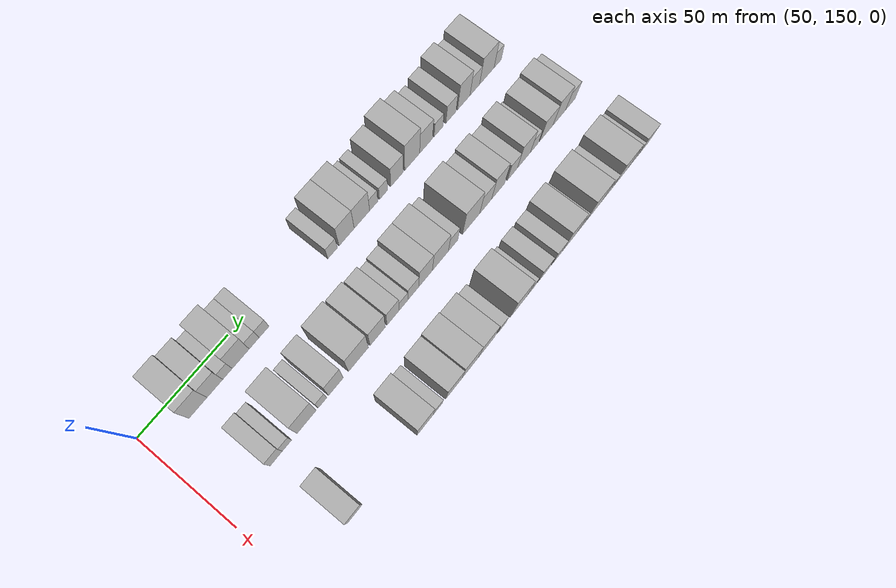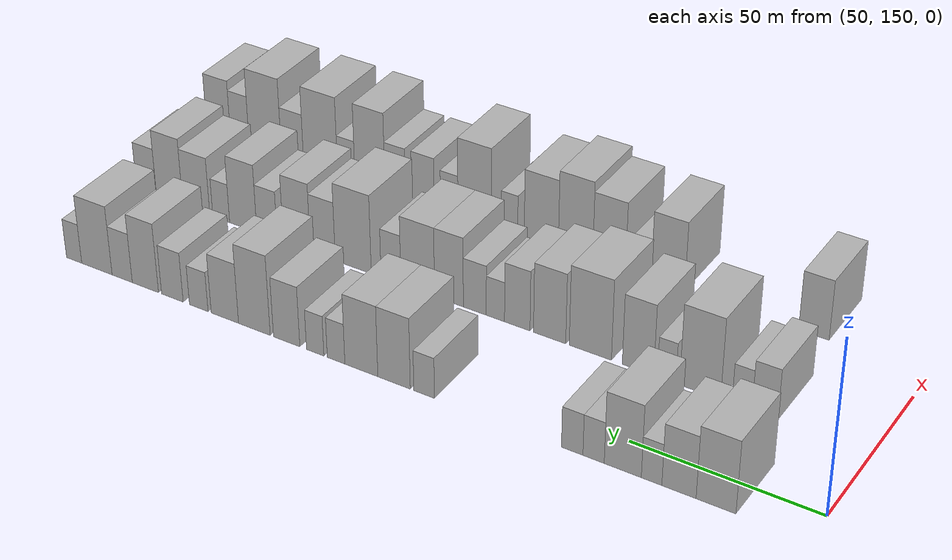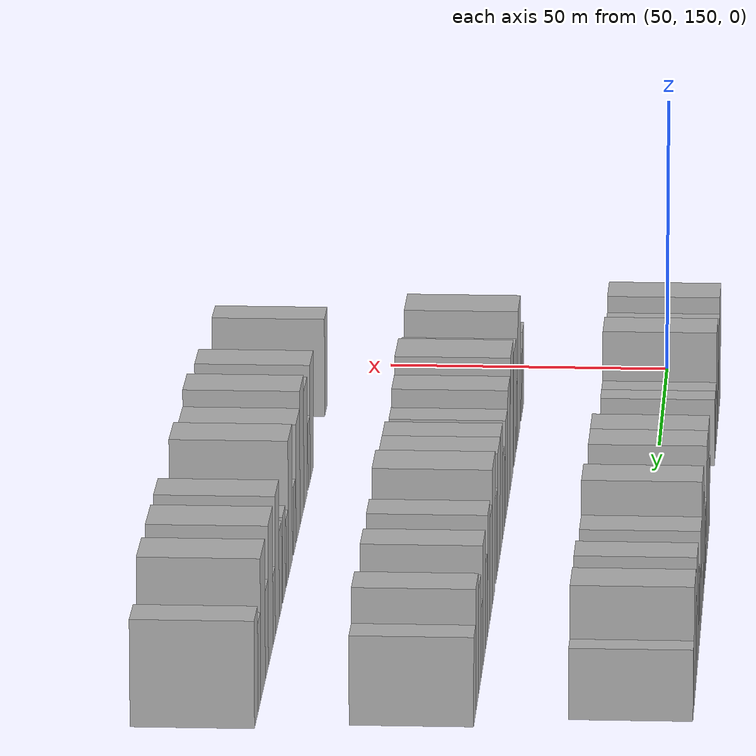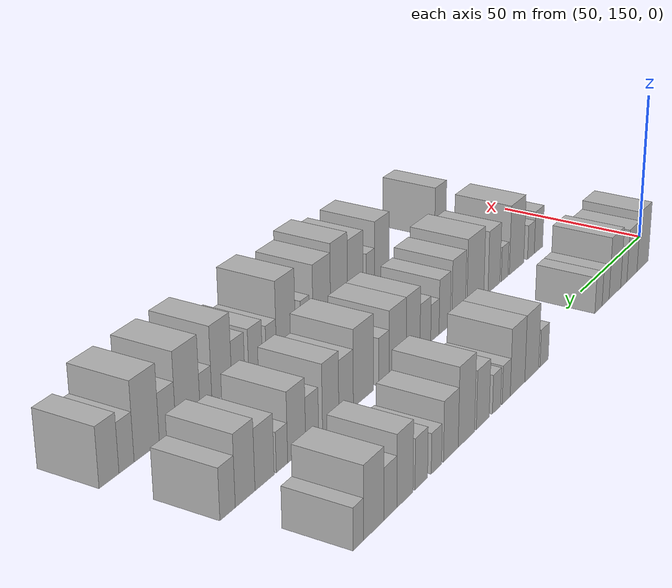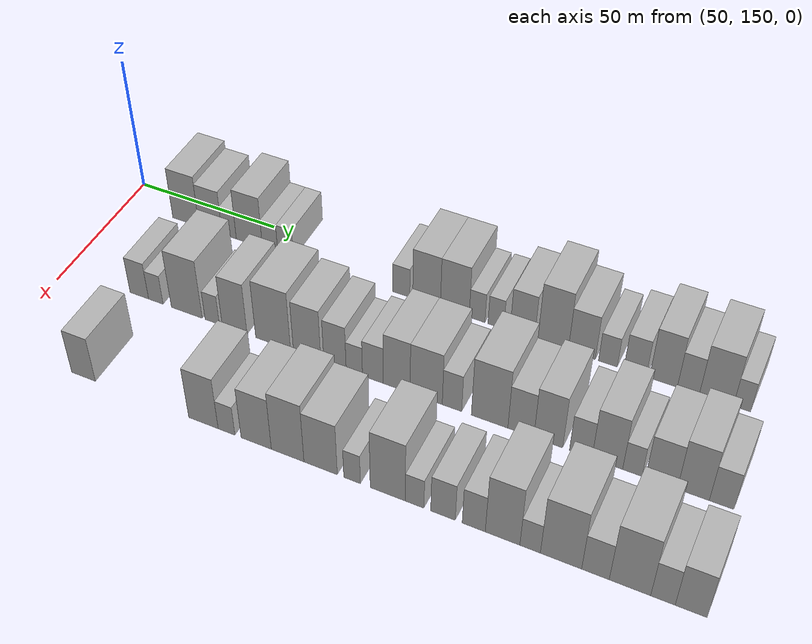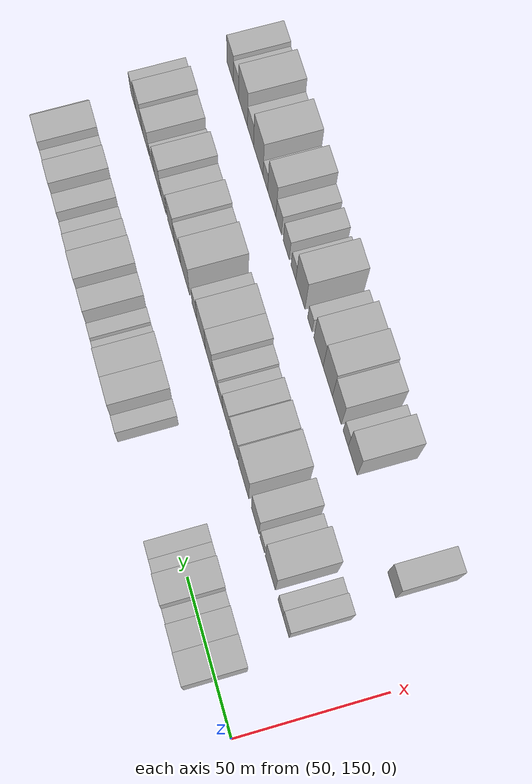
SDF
<sdf version="1.6">
 <world name="default">
  <model name="building_61">
   <static>1</static>
   <pose>50.0000 172.6481 0 0.000000 0.000000 0.000000</pose>
   <link name="link">
    <pose>0 0 10.50 0 0 0</pose>
    <collision name="collision"><geometry><box><size>20.0000 9.9621 21.0000</size></box></geometry></collision>
    <visual name="visual">
     <cast_shadows>0</cast_shadows>
     <geometry><box><size>20.0000 9.9621 21.0000</size></box></geometry>
     <material>
      <script>
       <uri>model://HANNAS_wall/materials/scripts</uri>
       <uri>model://HANNAS_wall/materials/textures</uri>
       <name>vrc/HANNAS_wall</name>
      </script>
     </material>
    </visual>
   </link>
  </model>
  <model name="building_62">
   <static>1</static>
   <pose>50.0000 181.9780 0 0.000000 0.000000 0.000000</pose>
   <link name="link">
    <pose>0 0 9.00 0 0 0</pose>
    <collision name="collision"><geometry><box><size>20.0000 8.6977 18.0000</size></box></geometry></collision>
    <visual name="visual">
     <cast_shadows>0</cast_shadows>
     <geometry><box><size>20.0000 8.6977 18.0000</size></box></geometry>
     <material>
      <script>
       <uri>model://HANNAS_wall/materials/scripts</uri>
       <uri>model://HANNAS_wall/materials/textures</uri>
       <name>vrc/HANNAS_wall</name>
      </script>
     </material>
    </visual>
   </link>
  </model>
  <model name="building_63">
   <static>1</static>
   <pose>50.0000 188.9612 0 0.000000 0.000000 0.000000</pose>
   <link name="link">
    <pose>0 0 6.00 0 0 0</pose>
    <collision name="collision"><geometry><box><size>20.0000 5.2688 12.0000</size></box></geometry></collision>
    <visual name="visual">
     <cast_shadows>0</cast_shadows>
     <geometry><box><size>20.0000 5.2688 12.0000</size></box></geometry>
     <material>
      <script>
       <uri>model://HANNAS_wall/materials/scripts</uri>
       <uri>model://HANNAS_wall/materials/textures</uri>
       <name>vrc/HANNAS_wall</name>
      </script>
     </material>
    </visual>
   </link>
  </model>
  <model name="building_64">
   <static>1</static>
   <pose>50.0000 196.4151 0 0.000000 0.000000 0.000000</pose>
   <link name="link">
    <pose>0 0 10.50 0 0 0</pose>
    <collision name="collision"><geometry><box><size>20.0000 9.6390 21.0000</size></box></geometry></collision>
    <visual name="visual">
     <cast_shadows>0</cast_shadows>
     <geometry><box><size>20.0000 9.6390 21.0000</size></box></geometry>
     <material>
      <script>
       <uri>model://HANNAS_wall/materials/scripts</uri>
       <uri>model://HANNAS_wall/materials/textures</uri>
       <name>vrc/HANNAS_wall</name>
      </script>
     </material>
    </visual>
   </link>
  </model>
  <model name="building_65">
   <static>1</static>
   <pose>50.0000 204.0340 0 0.000000 0.000000 0.000000</pose>
   <link name="link">
    <pose>0 0 6.00 0 0 0</pose>
    <collision name="collision"><geometry><box><size>20.0000 5.5989 12.0000</size></box></geometry></collision>
    <visual name="visual">
     <cast_shadows>0</cast_shadows>
     <geometry><box><size>20.0000 5.5989 12.0000</size></box></geometry>
     <material>
      <script>
       <uri>model://HANNAS_wall/materials/scripts</uri>
       <uri>model://HANNAS_wall/materials/textures</uri>
       <name>vrc/HANNAS_wall</name>
      </script>
     </material>
    </visual>
   </link>
  </model>
  <model name="building_66">
   <static>1</static>
   <pose>50.0000 209.6864 0 0.000000 0.000000 0.000000</pose>
   <link name="link">
    <pose>0 0 6.00 0 0 0</pose>
    <collision name="collision"><geometry><box><size>20.0000 5.7058 12.0000</size></box></geometry></collision>
    <visual name="visual">
     <cast_shadows>0</cast_shadows>
     <geometry><box><size>20.0000 5.7058 12.0000</size></box></geometry>
     <material>
      <script>
       <uri>model://HANNAS_wall/materials/scripts</uri>
       <uri>model://HANNAS_wall/materials/textures</uri>
       <name>vrc/HANNAS_wall</name>
      </script>
     </material>
    </visual>
   </link>
  </model>
  <model name="building_67">
   <static>1</static>
   <pose>50.0000 250.3067 0 0.000000 0.000000 0.000000</pose>
   <link name="link">
    <pose>0 0 6.00 0 0 0</pose>
    <collision name="collision"><geometry><box><size>20.0000 5.8449 12.0000</size></box></geometry></collision>
    <visual name="visual">
     <cast_shadows>0</cast_shadows>
     <geometry><box><size>20.0000 5.8449 12.0000</size></box></geometry>
     <material>
      <script>
       <uri>model://HANNAS_wall/materials/scripts</uri>
       <uri>model://HANNAS_wall/materials/textures</uri>
       <name>vrc/HANNAS_wall</name>
      </script>
     </material>
    </visual>
   </link>
  </model>
  <model name="building_68">
   <static>1</static>
   <pose>50.0000 258.8934 0 0.000000 0.000000 0.000000</pose>
   <link name="link">
    <pose>0 0 10.50 0 0 0</pose>
    <collision name="collision"><geometry><box><size>20.0000 9.3284 21.0000</size></box></geometry></collision>
    <visual name="visual">
     <cast_shadows>0</cast_shadows>
     <geometry><box><size>20.0000 9.3284 21.0000</size></box></geometry>
     <material>
      <script>
       <uri>model://HANNAS_wall/materials/scripts</uri>
       <uri>model://HANNAS_wall/materials/textures</uri>
       <name>vrc/HANNAS_wall</name>
      </script>
     </material>
    </visual>
   </link>
  </model>
  <model name="building_69">
   <static>1</static>
   <pose>50.0000 268.3573 0 0.000000 0.000000 0.000000</pose>
   <link name="link">
    <pose>0 0 10.50 0 0 0</pose>
    <collision name="collision"><geometry><box><size>20.0000 9.5994 21.0000</size></box></geometry></collision>
    <visual name="visual">
     <cast_shadows>0</cast_shadows>
     <geometry><box><size>20.0000 9.5994 21.0000</size></box></geometry>
     <material>
      <script>
       <uri>model://HANNAS_wall/materials/scripts</uri>
       <uri>model://HANNAS_wall/materials/textures</uri>
       <name>vrc/HANNAS_wall</name>
      </script>
     </material>
    </visual>
   </link>
  </model>
  <model name="building_70">
   <static>1</static>
   <pose>50.0000 275.7526 0 0.000000 0.000000 0.000000</pose>
   <link name="link">
    <pose>0 0 6.00 0 0 0</pose>
    <collision name="collision"><geometry><box><size>20.0000 5.1912 12.0000</size></box></geometry></collision>
    <visual name="visual">
     <cast_shadows>0</cast_shadows>
     <geometry><box><size>20.0000 5.1912 12.0000</size></box></geometry>
     <material>
      <script>
       <uri>model://HANNAS_wall/materials/scripts</uri>
       <uri>model://HANNAS_wall/materials/textures</uri>
       <name>vrc/HANNAS_wall</name>
      </script>
     </material>
    </visual>
   </link>
  </model>
  <model name="building_71">
   <static>1</static>
   <pose>50.0000 281.9359 0 0.000000 0.000000 0.000000</pose>
   <link name="link">
    <pose>0 0 6.00 0 0 0</pose>
    <collision name="collision"><geometry><box><size>20.0000 5.1754 12.0000</size></box></geometry></collision>
    <visual name="visual">
     <cast_shadows>0</cast_shadows>
     <geometry><box><size>20.0000 5.1754 12.0000</size></box></geometry>
     <material>
      <script>
       <uri>model://HANNAS_wall/materials/scripts</uri>
       <uri>model://HANNAS_wall/materials/textures</uri>
       <name>vrc/HANNAS_wall</name>
      </script>
     </material>
    </visual>
   </link>
  </model>
  <model name="building_72">
   <static>1</static>
   <pose>50.0000 290.4925 0 0.000000 0.000000 0.000000</pose>
   <link name="link">
    <pose>0 0 9.00 0 0 0</pose>
    <collision name="collision"><geometry><box><size>20.0000 7.9378 18.0000</size></box></geometry></collision>
    <visual name="visual">
     <cast_shadows>0</cast_shadows>
     <geometry><box><size>20.0000 7.9378 18.0000</size></box></geometry>
     <material>
      <script>
       <uri>model://HANNAS_wall/materials/scripts</uri>
       <uri>model://HANNAS_wall/materials/textures</uri>
       <name>vrc/HANNAS_wall</name>
      </script>
     </material>
    </visual>
   </link>
  </model>
  <model name="building_73">
   <static>1</static>
   <pose>50.0000 300.3089 0 0.000000 0.000000 0.000000</pose>
   <link name="link">
    <pose>0 0 12.00 0 0 0</pose>
    <collision name="collision"><geometry><box><size>20.0000 9.6949 24.0000</size></box></geometry></collision>
    <visual name="visual">
     <cast_shadows>0</cast_shadows>
     <geometry><box><size>20.0000 9.6949 24.0000</size></box></geometry>
     <material>
      <script>
       <uri>model://HANNAS_wall/materials/scripts</uri>
       <uri>model://HANNAS_wall/materials/textures</uri>
       <name>vrc/HANNAS_wall</name>
      </script>
     </material>
    </visual>
   </link>
  </model>
  <model name="building_74">
   <static>1</static>
   <pose>50.0000 309.3920 0 0.000000 0.000000 0.000000</pose>
   <link name="link">
    <pose>0 0 9.00 0 0 0</pose>
    <collision name="collision"><geometry><box><size>20.0000 8.4714 18.0000</size></box></geometry></collision>
    <visual name="visual">
     <cast_shadows>0</cast_shadows>
     <geometry><box><size>20.0000 8.4714 18.0000</size></box></geometry>
     <material>
      <script>
       <uri>model://HANNAS_wall/materials/scripts</uri>
       <uri>model://HANNAS_wall/materials/textures</uri>
       <name>vrc/HANNAS_wall</name>
      </script>
     </material>
    </visual>
   </link>
  </model>
  <model name="building_75">
   <static>1</static>
   <pose>50.0000 317.5384 0 0.000000 0.000000 0.000000</pose>
   <link name="link">
    <pose>0 0 6.00 0 0 0</pose>
    <collision name="collision"><geometry><box><size>20.0000 5.8214 12.0000</size></box></geometry></collision>
    <visual name="visual">
     <cast_shadows>0</cast_shadows>
     <geometry><box><size>20.0000 5.8214 12.0000</size></box></geometry>
     <material>
      <script>
       <uri>model://HANNAS_wall/materials/scripts</uri>
       <uri>model://HANNAS_wall/materials/textures</uri>
       <name>vrc/HANNAS_wall</name>
      </script>
     </material>
    </visual>
   </link>
  </model>
  <model name="building_76">
   <static>1</static>
   <pose>50.0000 325.8765 0 0.000000 0.000000 0.000000</pose>
   <link name="link">
    <pose>0 0 7.50 0 0 0</pose>
    <collision name="collision"><geometry><box><size>20.0000 6.8547 15.0000</size></box></geometry></collision>
    <visual name="visual">
     <cast_shadows>0</cast_shadows>
     <geometry><box><size>20.0000 6.8547 15.0000</size></box></geometry>
     <material>
      <script>
       <uri>model://HANNAS_wall/materials/scripts</uri>
       <uri>model://HANNAS_wall/materials/textures</uri>
       <name>vrc/HANNAS_wall</name>
      </script>
     </material>
    </visual>
   </link>
  </model>
  <model name="building_77">
   <static>1</static>
   <pose>50.0000 334.5236 0 0.000000 0.000000 0.000000</pose>
   <link name="link">
    <pose>0 0 10.50 0 0 0</pose>
    <collision name="collision"><geometry><box><size>20.0000 8.4394 21.0000</size></box></geometry></collision>
    <visual name="visual">
     <cast_shadows>0</cast_shadows>
     <geometry><box><size>20.0000 8.4394 21.0000</size></box></geometry>
     <material>
      <script>
       <uri>model://HANNAS_wall/materials/scripts</uri>
       <uri>model://HANNAS_wall/materials/textures</uri>
       <name>vrc/HANNAS_wall</name>
      </script>
     </material>
    </visual>
   </link>
  </model>
  <model name="building_78">
   <static>1</static>
   <pose>50.0000 342.0284 0 0.000000 0.000000 0.000000</pose>
   <link name="link">
    <pose>0 0 7.50 0 0 0</pose>
    <collision name="collision"><geometry><box><size>20.0000 6.5702 15.0000</size></box></geometry></collision>
    <visual name="visual">
     <cast_shadows>0</cast_shadows>
     <geometry><box><size>20.0000 6.5702 15.0000</size></box></geometry>
     <material>
      <script>
       <uri>model://HANNAS_wall/materials/scripts</uri>
       <uri>model://HANNAS_wall/materials/textures</uri>
       <name>vrc/HANNAS_wall</name>
      </script>
     </material>
    </visual>
   </link>
  </model>
  <model name="building_79">
   <static>1</static>
   <pose>50.0000 350.3198 0 0.000000 0.000000 0.000000</pose>
   <link name="link">
    <pose>0 0 10.50 0 0 0</pose>
    <collision name="collision"><geometry><box><size>20.0000 10.0126 21.0000</size></box></geometry></collision>
    <visual name="visual">
     <cast_shadows>0</cast_shadows>
     <geometry><box><size>20.0000 10.0126 21.0000</size></box></geometry>
     <material>
      <script>
       <uri>model://HANNAS_wall/materials/scripts</uri>
       <uri>model://HANNAS_wall/materials/textures</uri>
       <name>vrc/HANNAS_wall</name>
      </script>
     </material>
    </visual>
   </link>
  </model>
  <model name="building_80">
   <static>1</static>
   <pose>50.0000 357.8512 0 0.000000 0.000000 0.000000</pose>
   <link name="link">
    <pose>0 0 6.00 0 0 0</pose>
    <collision name="collision"><geometry><box><size>20.0000 5.0502 12.0000</size></box></geometry></collision>
    <visual name="visual">
     <cast_shadows>0</cast_shadows>
     <geometry><box><size>20.0000 5.0502 12.0000</size></box></geometry>
     <material>
      <script>
       <uri>model://HANNAS_wall/materials/scripts</uri>
       <uri>model://HANNAS_wall/materials/textures</uri>
       <name>vrc/HANNAS_wall</name>
      </script>
     </material>
    </visual>
   </link>
  </model>
  <model name="building_140">
   <static>1</static>
   <pose>85.0000 177.2224 0 0.000000 0.000000 0.000000</pose>
   <link name="link">
    <pose>0 0 7.50 0 0 0</pose>
    <collision name="collision"><geometry><box><size>20.0000 6.7358 15.0000</size></box></geometry></collision>
    <visual name="visual">
     <cast_shadows>0</cast_shadows>
     <geometry><box><size>20.0000 6.7358 15.0000</size></box></geometry>
     <material>
      <script>
       <uri>model://HANNAS_wall/materials/scripts</uri>
       <uri>model://HANNAS_wall/materials/textures</uri>
       <name>vrc/HANNAS_wall</name>
      </script>
     </material>
    </visual>
   </link>
  </model>
  <model name="building_141">
   <static>1</static>
   <pose>85.0000 183.2070 0 0.000000 0.000000 0.000000</pose>
   <link name="link">
    <pose>0 0 6.00 0 0 0</pose>
    <collision name="collision"><geometry><box><size>20.0000 5.2334 12.0000</size></box></geometry></collision>
    <visual name="visual">
     <cast_shadows>0</cast_shadows>
     <geometry><box><size>20.0000 5.2334 12.0000</size></box></geometry>
     <material>
      <script>
       <uri>model://HANNAS_wall/materials/scripts</uri>
       <uri>model://HANNAS_wall/materials/textures</uri>
       <name>vrc/HANNAS_wall</name>
      </script>
     </material>
    </visual>
   </link>
  </model>
  <model name="building_142">
   <static>1</static>
   <pose>85.0000 194.3095 0 0.000000 0.000000 0.000000</pose>
   <link name="link">
    <pose>0 0 12.00 0 0 0</pose>
    <collision name="collision"><geometry><box><size>20.0000 10.9716 24.0000</size></box></geometry></collision>
    <visual name="visual">
     <cast_shadows>0</cast_shadows>
     <geometry><box><size>20.0000 10.9716 24.0000</size></box></geometry>
     <material>
      <script>
       <uri>model://HANNAS_wall/materials/scripts</uri>
       <uri>model://HANNAS_wall/materials/textures</uri>
       <name>vrc/HANNAS_wall</name>
      </script>
     </material>
    </visual>
   </link>
  </model>
  <model name="building_143">
   <static>1</static>
   <pose>85.0000 203.3020 0 0.000000 0.000000 0.000000</pose>
   <link name="link">
    <pose>0 0 6.00 0 0 0</pose>
    <collision name="collision"><geometry><box><size>20.0000 5.0134 12.0000</size></box></geometry></collision>
    <visual name="visual">
     <cast_shadows>0</cast_shadows>
     <geometry><box><size>20.0000 5.0134 12.0000</size></box></geometry>
     <material>
      <script>
       <uri>model://HANNAS_wall/materials/scripts</uri>
       <uri>model://HANNAS_wall/materials/textures</uri>
       <name>vrc/HANNAS_wall</name>
      </script>
     </material>
    </visual>
   </link>
  </model>
  <model name="building_144">
   <static>1</static>
   <pose>85.0000 211.1215 0 0.000000 0.000000 0.000000</pose>
   <link name="link">
    <pose>0 0 10.50 0 0 0</pose>
    <collision name="collision"><geometry><box><size>20.0000 8.6256 21.0000</size></box></geometry></collision>
    <visual name="visual">
     <cast_shadows>0</cast_shadows>
     <geometry><box><size>20.0000 8.6256 21.0000</size></box></geometry>
     <material>
      <script>
       <uri>model://HANNAS_wall/materials/scripts</uri>
       <uri>model://HANNAS_wall/materials/textures</uri>
       <name>vrc/HANNAS_wall</name>
      </script>
     </material>
    </visual>
   </link>
  </model>
  <model name="building_145">
   <static>1</static>
   <pose>85.0000 224.3426 0 0.000000 0.000000 0.000000</pose>
   <link name="link">
    <pose>0 0 12.00 0 0 0</pose>
    <collision name="collision"><geometry><box><size>20.0000 11.8166 24.0000</size></box></geometry></collision>
    <visual name="visual">
     <cast_shadows>0</cast_shadows>
     <geometry><box><size>20.0000 11.8166 24.0000</size></box></geometry>
     <material>
      <script>
       <uri>model://HANNAS_wall/materials/scripts</uri>
       <uri>model://HANNAS_wall/materials/textures</uri>
       <name>vrc/HANNAS_wall</name>
      </script>
     </material>
    </visual>
   </link>
  </model>
  <model name="building_146">
   <static>1</static>
   <pose>85.0000 235.8409 0 0.000000 0.000000 0.000000</pose>
   <link name="link">
    <pose>0 0 10.50 0 0 0</pose>
    <collision name="collision"><geometry><box><size>20.0000 9.1802 21.0000</size></box></geometry></collision>
    <visual name="visual">
     <cast_shadows>0</cast_shadows>
     <geometry><box><size>20.0000 9.1802 21.0000</size></box></geometry>
     <material>
      <script>
       <uri>model://HANNAS_wall/materials/scripts</uri>
       <uri>model://HANNAS_wall/materials/textures</uri>
       <name>vrc/HANNAS_wall</name>
      </script>
     </material>
    </visual>
   </link>
  </model>
  <model name="building_147">
   <static>1</static>
   <pose>85.0000 245.1140 0 0.000000 0.000000 0.000000</pose>
   <link name="link">
    <pose>0 0 9.00 0 0 0</pose>
    <collision name="collision"><geometry><box><size>20.0000 7.3660 18.0000</size></box></geometry></collision>
    <visual name="visual">
     <cast_shadows>0</cast_shadows>
     <geometry><box><size>20.0000 7.3660 18.0000</size></box></geometry>
     <material>
      <script>
       <uri>model://HANNAS_wall/materials/scripts</uri>
       <uri>model://HANNAS_wall/materials/textures</uri>
       <name>vrc/HANNAS_wall</name>
      </script>
     </material>
    </visual>
   </link>
  </model>
  <model name="building_148">
   <static>1</static>
   <pose>85.0000 251.4587 0 0.000000 0.000000 0.000000</pose>
   <link name="link">
    <pose>0 0 6.00 0 0 0</pose>
    <collision name="collision"><geometry><box><size>20.0000 5.3233 12.0000</size></box></geometry></collision>
    <visual name="visual">
     <cast_shadows>0</cast_shadows>
     <geometry><box><size>20.0000 5.3233 12.0000</size></box></geometry>
     <material>
      <script>
       <uri>model://HANNAS_wall/materials/scripts</uri>
       <uri>model://HANNAS_wall/materials/textures</uri>
       <name>vrc/HANNAS_wall</name>
      </script>
     </material>
    </visual>
   </link>
  </model>
  <model name="building_149">
   <static>1</static>
   <pose>85.0000 257.5007 0 0.000000 0.000000 0.000000</pose>
   <link name="link">
    <pose>0 0 7.50 0 0 0</pose>
    <collision name="collision"><geometry><box><size>20.0000 6.7607 15.0000</size></box></geometry></collision>
    <visual name="visual">
     <cast_shadows>0</cast_shadows>
     <geometry><box><size>20.0000 6.7607 15.0000</size></box></geometry>
     <material>
      <script>
       <uri>model://HANNAS_wall/materials/scripts</uri>
       <uri>model://HANNAS_wall/materials/textures</uri>
       <name>vrc/HANNAS_wall</name>
      </script>
     </material>
    </visual>
   </link>
  </model>
  <model name="building_150">
   <static>1</static>
   <pose>85.0000 265.1658 0 0.000000 0.000000 0.000000</pose>
   <link name="link">
    <pose>0 0 10.50 0 0 0</pose>
    <collision name="collision"><geometry><box><size>20.0000 8.5696 21.0000</size></box></geometry></collision>
    <visual name="visual">
     <cast_shadows>0</cast_shadows>
     <geometry><box><size>20.0000 8.5696 21.0000</size></box></geometry>
     <material>
      <script>
       <uri>model://HANNAS_wall/materials/scripts</uri>
       <uri>model://HANNAS_wall/materials/textures</uri>
       <name>vrc/HANNAS_wall</name>
      </script>
     </material>
    </visual>
   </link>
  </model>
  <model name="building_151">
   <static>1</static>
   <pose>85.0000 274.5341 0 0.000000 0.000000 0.000000</pose>
   <link name="link">
    <pose>0 0 10.50 0 0 0</pose>
    <collision name="collision"><geometry><box><size>20.0000 10.1670 21.0000</size></box></geometry></collision>
    <visual name="visual">
     <cast_shadows>0</cast_shadows>
     <geometry><box><size>20.0000 10.1670 21.0000</size></box></geometry>
     <material>
      <script>
       <uri>model://HANNAS_wall/materials/scripts</uri>
       <uri>model://HANNAS_wall/materials/textures</uri>
       <name>vrc/HANNAS_wall</name>
      </script>
     </material>
    </visual>
   </link>
  </model>
  <model name="building_152">
   <static>1</static>
   <pose>85.0000 282.6498 0 0.000000 0.000000 0.000000</pose>
   <link name="link">
    <pose>0 0 7.50 0 0 0</pose>
    <collision name="collision"><geometry><box><size>20.0000 6.0645 15.0000</size></box></geometry></collision>
    <visual name="visual">
     <cast_shadows>0</cast_shadows>
     <geometry><box><size>20.0000 6.0645 15.0000</size></box></geometry>
     <material>
      <script>
       <uri>model://HANNAS_wall/materials/scripts</uri>
       <uri>model://HANNAS_wall/materials/textures</uri>
       <name>vrc/HANNAS_wall</name>
      </script>
     </material>
    </visual>
   </link>
  </model>
  <model name="building_153">
   <static>1</static>
   <pose>85.0000 294.2695 0 0.000000 0.000000 0.000000</pose>
   <link name="link">
    <pose>0 0 12.00 0 0 0</pose>
    <collision name="collision"><geometry><box><size>20.0000 11.1749 24.0000</size></box></geometry></collision>
    <visual name="visual">
     <cast_shadows>0</cast_shadows>
     <geometry><box><size>20.0000 11.1749 24.0000</size></box></geometry>
     <material>
      <script>
       <uri>model://HANNAS_wall/materials/scripts</uri>
       <uri>model://HANNAS_wall/materials/textures</uri>
       <name>vrc/HANNAS_wall</name>
      </script>
     </material>
    </visual>
   </link>
  </model>
  <model name="building_154">
   <static>1</static>
   <pose>85.0000 303.7749 0 0.000000 0.000000 0.000000</pose>
   <link name="link">
    <pose>0 0 9.00 0 0 0</pose>
    <collision name="collision"><geometry><box><size>20.0000 7.8359 18.0000</size></box></geometry></collision>
    <visual name="visual">
     <cast_shadows>0</cast_shadows>
     <geometry><box><size>20.0000 7.8359 18.0000</size></box></geometry>
     <material>
      <script>
       <uri>model://HANNAS_wall/materials/scripts</uri>
       <uri>model://HANNAS_wall/materials/textures</uri>
       <name>vrc/HANNAS_wall</name>
      </script>
     </material>
    </visual>
   </link>
  </model>
  <model name="building_155">
   <static>1</static>
   <pose>85.0000 311.9945 0 0.000000 0.000000 0.000000</pose>
   <link name="link">
    <pose>0 0 10.50 0 0 0</pose>
    <collision name="collision"><geometry><box><size>20.0000 8.6032 21.0000</size></box></geometry></collision>
    <visual name="visual">
     <cast_shadows>0</cast_shadows>
     <geometry><box><size>20.0000 8.6032 21.0000</size></box></geometry>
     <material>
      <script>
       <uri>model://HANNAS_wall/materials/scripts</uri>
       <uri>model://HANNAS_wall/materials/textures</uri>
       <name>vrc/HANNAS_wall</name>
      </script>
     </material>
    </visual>
   </link>
  </model>
  <model name="building_156">
   <static>1</static>
   <pose>85.0000 321.5913 0 0.000000 0.000000 0.000000</pose>
   <link name="link">
    <pose>0 0 7.50 0 0 0</pose>
    <collision name="collision"><geometry><box><size>20.0000 6.5905 15.0000</size></box></geometry></collision>
    <visual name="visual">
     <cast_shadows>0</cast_shadows>
     <geometry><box><size>20.0000 6.5905 15.0000</size></box></geometry>
     <material>
      <script>
       <uri>model://HANNAS_wall/materials/scripts</uri>
       <uri>model://HANNAS_wall/materials/textures</uri>
       <name>vrc/HANNAS_wall</name>
      </script>
     </material>
    </visual>
   </link>
  </model>
  <model name="building_157">
   <static>1</static>
   <pose>85.0000 329.3433 0 0.000000 0.000000 0.000000</pose>
   <link name="link">
    <pose>0 0 10.50 0 0 0</pose>
    <collision name="collision"><geometry><box><size>20.0000 8.9135 21.0000</size></box></geometry></collision>
    <visual name="visual">
     <cast_shadows>0</cast_shadows>
     <geometry><box><size>20.0000 8.9135 21.0000</size></box></geometry>
     <material>
      <script>
       <uri>model://HANNAS_wall/materials/scripts</uri>
       <uri>model://HANNAS_wall/materials/textures</uri>
       <name>vrc/HANNAS_wall</name>
      </script>
     </material>
    </visual>
   </link>
  </model>
  <model name="building_158">
   <static>1</static>
   <pose>85.0000 336.5706 0 0.000000 0.000000 0.000000</pose>
   <link name="link">
    <pose>0 0 6.00 0 0 0</pose>
    <collision name="collision"><geometry><box><size>20.0000 5.5410 12.0000</size></box></geometry></collision>
    <visual name="visual">
     <cast_shadows>0</cast_shadows>
     <geometry><box><size>20.0000 5.5410 12.0000</size></box></geometry>
     <material>
      <script>
       <uri>model://HANNAS_wall/materials/scripts</uri>
       <uri>model://HANNAS_wall/materials/textures</uri>
       <name>vrc/HANNAS_wall</name>
      </script>
     </material>
    </visual>
   </link>
  </model>
  <model name="building_159">
   <static>1</static>
   <pose>85.0000 344.8293 0 0.000000 0.000000 0.000000</pose>
   <link name="link">
    <pose>0 0 9.00 0 0 0</pose>
    <collision name="collision"><geometry><box><size>20.0000 8.9763 18.0000</size></box></geometry></collision>
    <visual name="visual">
     <cast_shadows>0</cast_shadows>
     <geometry><box><size>20.0000 8.9763 18.0000</size></box></geometry>
     <material>
      <script>
       <uri>model://HANNAS_wall/materials/scripts</uri>
       <uri>model://HANNAS_wall/materials/textures</uri>
       <name>vrc/HANNAS_wall</name>
      </script>
     </material>
    </visual>
   </link>
  </model>
  <model name="building_160">
   <static>1</static>
   <pose>85.0000 353.7870 0 0.000000 0.000000 0.000000</pose>
   <link name="link">
    <pose>0 0 10.50 0 0 0</pose>
    <collision name="collision"><geometry><box><size>20.0000 8.9390 21.0000</size></box></geometry></collision>
    <visual name="visual">
     <cast_shadows>0</cast_shadows>
     <geometry><box><size>20.0000 8.9390 21.0000</size></box></geometry>
     <material>
      <script>
       <uri>model://HANNAS_wall/materials/scripts</uri>
       <uri>model://HANNAS_wall/materials/textures</uri>
       <name>vrc/HANNAS_wall</name>
      </script>
     </material>
    </visual>
   </link>
  </model>
  <model name="building_161">
   <static>1</static>
   <pose>85.0000 361.6491 0 0.000000 0.000000 0.000000</pose>
   <link name="link">
    <pose>0 0 7.50 0 0 0</pose>
    <collision name="collision"><geometry><box><size>20.0000 6.7854 15.0000</size></box></geometry></collision>
    <visual name="visual">
     <cast_shadows>0</cast_shadows>
     <geometry><box><size>20.0000 6.7854 15.0000</size></box></geometry>
     <material>
      <script>
       <uri>model://HANNAS_wall/materials/scripts</uri>
       <uri>model://HANNAS_wall/materials/textures</uri>
       <name>vrc/HANNAS_wall</name>
      </script>
     </material>
    </visual>
   </link>
  </model>
  <model name="building_224">
   <static>1</static>
   <pose>120.0000 180.5081 0 0.000000 0.000000 0.000000</pose>
   <link name="link">
    <pose>0 0 9.00 0 0 0</pose>
    <collision name="collision"><geometry><box><size>20.0000 8.2556 18.0000</size></box></geometry></collision>
    <visual name="visual">
     <cast_shadows>0</cast_shadows>
     <geometry><box><size>20.0000 8.2556 18.0000</size></box></geometry>
     <material>
      <script>
       <uri>model://HANNAS_wall/materials/scripts</uri>
       <uri>model://HANNAS_wall/materials/textures</uri>
       <name>vrc/HANNAS_wall</name>
      </script>
     </material>
    </visual>
   </link>
  </model>
  <model name="building_225">
   <static>1</static>
   <pose>120.0000 221.1283 0 0.000000 0.000000 0.000000</pose>
   <link name="link">
    <pose>0 0 10.50 0 0 0</pose>
    <collision name="collision"><geometry><box><size>20.0000 9.6616 21.0000</size></box></geometry></collision>
    <visual name="visual">
     <cast_shadows>0</cast_shadows>
     <geometry><box><size>20.0000 9.6616 21.0000</size></box></geometry>
     <material>
      <script>
       <uri>model://HANNAS_wall/materials/scripts</uri>
       <uri>model://HANNAS_wall/materials/textures</uri>
       <name>vrc/HANNAS_wall</name>
      </script>
     </material>
    </visual>
   </link>
  </model>
  <model name="building_226">
   <static>1</static>
   <pose>120.0000 228.6756 0 0.000000 0.000000 0.000000</pose>
   <link name="link">
    <pose>0 0 6.00 0 0 0</pose>
    <collision name="collision"><geometry><box><size>20.0000 5.4329 12.0000</size></box></geometry></collision>
    <visual name="visual">
     <cast_shadows>0</cast_shadows>
     <geometry><box><size>20.0000 5.4329 12.0000</size></box></geometry>
     <material>
      <script>
       <uri>model://HANNAS_wall/materials/scripts</uri>
       <uri>model://HANNAS_wall/materials/textures</uri>
       <name>vrc/HANNAS_wall</name>
      </script>
     </material>
    </visual>
   </link>
  </model>
  <model name="building_227">
   <static>1</static>
   <pose>120.0000 238.2212 0 0.000000 0.000000 0.000000</pose>
   <link name="link">
    <pose>0 0 10.50 0 0 0</pose>
    <collision name="collision"><geometry><box><size>20.0000 9.6582 21.0000</size></box></geometry></collision>
    <visual name="visual">
     <cast_shadows>0</cast_shadows>
     <geometry><box><size>20.0000 9.6582 21.0000</size></box></geometry>
     <material>
      <script>
       <uri>model://HANNAS_wall/materials/scripts</uri>
       <uri>model://HANNAS_wall/materials/textures</uri>
       <name>vrc/HANNAS_wall</name>
      </script>
     </material>
    </visual>
   </link>
  </model>
  <model name="building_228">
   <static>1</static>
   <pose>120.0000 248.1871 0 0.000000 0.000000 0.000000</pose>
   <link name="link">
    <pose>0 0 12.00 0 0 0</pose>
    <collision name="collision"><geometry><box><size>20.0000 10.2736 24.0000</size></box></geometry></collision>
    <visual name="visual">
     <cast_shadows>0</cast_shadows>
     <geometry><box><size>20.0000 10.2736 24.0000</size></box></geometry>
     <material>
      <script>
       <uri>model://HANNAS_wall/materials/scripts</uri>
       <uri>model://HANNAS_wall/materials/textures</uri>
       <name>vrc/HANNAS_wall</name>
      </script>
     </material>
    </visual>
   </link>
  </model>
  <model name="building_229">
   <static>1</static>
   <pose>120.0000 258.4795 0 0.000000 0.000000 0.000000</pose>
   <link name="link">
    <pose>0 0 10.50 0 0 0</pose>
    <collision name="collision"><geometry><box><size>20.0000 10.3112 21.0000</size></box></geometry></collision>
    <visual name="visual">
     <cast_shadows>0</cast_shadows>
     <geometry><box><size>20.0000 10.3112 21.0000</size></box></geometry>
     <material>
      <script>
       <uri>model://HANNAS_wall/materials/scripts</uri>
       <uri>model://HANNAS_wall/materials/textures</uri>
       <name>vrc/HANNAS_wall</name>
      </script>
     </material>
    </visual>
   </link>
  </model>
  <model name="building_230">
   <static>1</static>
   <pose>120.0000 268.1564 0 0.000000 0.000000 0.000000</pose>
   <link name="link">
    <pose>0 0 6.00 0 0 0</pose>
    <collision name="collision"><geometry><box><size>20.0000 5.0425 12.0000</size></box></geometry></collision>
    <visual name="visual">
     <cast_shadows>0</cast_shadows>
     <geometry><box><size>20.0000 5.0425 12.0000</size></box></geometry>
     <material>
      <script>
       <uri>model://HANNAS_wall/materials/scripts</uri>
       <uri>model://HANNAS_wall/materials/textures</uri>
       <name>vrc/HANNAS_wall</name>
      </script>
     </material>
    </visual>
   </link>
  </model>
  <model name="building_231">
   <static>1</static>
   <pose>120.0000 278.9184 0 0.000000 0.000000 0.000000</pose>
   <link name="link">
    <pose>0 0 12.00 0 0 0</pose>
    <collision name="collision"><geometry><box><size>20.0000 10.4814 24.0000</size></box></geometry></collision>
    <visual name="visual">
     <cast_shadows>0</cast_shadows>
     <geometry><box><size>20.0000 10.4814 24.0000</size></box></geometry>
     <material>
      <script>
       <uri>model://HANNAS_wall/materials/scripts</uri>
       <uri>model://HANNAS_wall/materials/textures</uri>
       <name>vrc/HANNAS_wall</name>
      </script>
     </material>
    </visual>
   </link>
  </model>
  <model name="building_232">
   <static>1</static>
   <pose>120.0000 286.9186 0 0.000000 0.000000 0.000000</pose>
   <link name="link">
    <pose>0 0 6.00 0 0 0</pose>
    <collision name="collision"><geometry><box><size>20.0000 5.5190 12.0000</size></box></geometry></collision>
    <visual name="visual">
     <cast_shadows>0</cast_shadows>
     <geometry><box><size>20.0000 5.5190 12.0000</size></box></geometry>
     <material>
      <script>
       <uri>model://HANNAS_wall/materials/scripts</uri>
       <uri>model://HANNAS_wall/materials/textures</uri>
       <name>vrc/HANNAS_wall</name>
      </script>
     </material>
    </visual>
   </link>
  </model>
  <model name="building_233">
   <static>1</static>
   <pose>120.0000 295.2591 0 0.000000 0.000000 0.000000</pose>
   <link name="link">
    <pose>0 0 7.50 0 0 0</pose>
    <collision name="collision"><geometry><box><size>20.0000 7.1619 15.0000</size></box></geometry></collision>
    <visual name="visual">
     <cast_shadows>0</cast_shadows>
     <geometry><box><size>20.0000 7.1619 15.0000</size></box></geometry>
     <material>
      <script>
       <uri>model://HANNAS_wall/materials/scripts</uri>
       <uri>model://HANNAS_wall/materials/textures</uri>
       <name>vrc/HANNAS_wall</name>
      </script>
     </material>
    </visual>
   </link>
  </model>
  <model name="building_234">
   <static>1</static>
   <pose>120.0000 304.1498 0 0.000000 0.000000 0.000000</pose>
   <link name="link">
    <pose>0 0 7.50 0 0 0</pose>
    <collision name="collision"><geometry><box><size>20.0000 6.6194 15.0000</size></box></geometry></collision>
    <visual name="visual">
     <cast_shadows>0</cast_shadows>
     <geometry><box><size>20.0000 6.6194 15.0000</size></box></geometry>
     <material>
      <script>
       <uri>model://HANNAS_wall/materials/scripts</uri>
       <uri>model://HANNAS_wall/materials/textures</uri>
       <name>vrc/HANNAS_wall</name>
      </script>
     </material>
    </visual>
   </link>
  </model>
  <model name="building_235">
   <static>1</static>
   <pose>120.0000 312.3640 0 0.000000 0.000000 0.000000</pose>
   <link name="link">
    <pose>0 0 12.00 0 0 0</pose>
    <collision name="collision"><geometry><box><size>20.0000 9.8092 24.0000</size></box></geometry></collision>
    <visual name="visual">
     <cast_shadows>0</cast_shadows>
     <geometry><box><size>20.0000 9.8092 24.0000</size></box></geometry>
     <material>
      <script>
       <uri>model://HANNAS_wall/materials/scripts</uri>
       <uri>model://HANNAS_wall/materials/textures</uri>
       <name>vrc/HANNAS_wall</name>
      </script>
     </material>
    </visual>
   </link>
  </model>
  <model name="building_236">
   <static>1</static>
   <pose>120.0000 320.1377 0 0.000000 0.000000 0.000000</pose>
   <link name="link">
    <pose>0 0 6.00 0 0 0</pose>
    <collision name="collision"><geometry><box><size>20.0000 5.7381 12.0000</size></box></geometry></collision>
    <visual name="visual">
     <cast_shadows>0</cast_shadows>
     <geometry><box><size>20.0000 5.7381 12.0000</size></box></geometry>
     <material>
      <script>
       <uri>model://HANNAS_wall/materials/scripts</uri>
       <uri>model://HANNAS_wall/materials/textures</uri>
       <name>vrc/HANNAS_wall</name>
      </script>
     </material>
    </visual>
   </link>
  </model>
  <model name="building_237">
   <static>1</static>
   <pose>120.0000 328.6942 0 0.000000 0.000000 0.000000</pose>
   <link name="link">
    <pose>0 0 12.00 0 0 0</pose>
    <collision name="collision"><geometry><box><size>20.0000 11.3750 24.0000</size></box></geometry></collision>
    <visual name="visual">
     <cast_shadows>0</cast_shadows>
     <geometry><box><size>20.0000 11.3750 24.0000</size></box></geometry>
     <material>
      <script>
       <uri>model://HANNAS_wall/materials/scripts</uri>
       <uri>model://HANNAS_wall/materials/textures</uri>
       <name>vrc/HANNAS_wall</name>
      </script>
     </material>
    </visual>
   </link>
  </model>
  <model name="building_238">
   <static>1</static>
   <pose>120.0000 338.1262 0 0.000000 0.000000 0.000000</pose>
   <link name="link">
    <pose>0 0 7.50 0 0 0</pose>
    <collision name="collision"><geometry><box><size>20.0000 7.4888 15.0000</size></box></geometry></collision>
    <visual name="visual">
     <cast_shadows>0</cast_shadows>
     <geometry><box><size>20.0000 7.4888 15.0000</size></box></geometry>
     <material>
      <script>
       <uri>model://HANNAS_wall/materials/scripts</uri>
       <uri>model://HANNAS_wall/materials/textures</uri>
       <name>vrc/HANNAS_wall</name>
      </script>
     </material>
    </visual>
   </link>
  </model>
  <model name="building_239">
   <static>1</static>
   <pose>120.0000 347.4127 0 0.000000 0.000000 0.000000</pose>
   <link name="link">
    <pose>0 0 12.00 0 0 0</pose>
    <collision name="collision"><geometry><box><size>20.0000 11.0844 24.0000</size></box></geometry></collision>
    <visual name="visual">
     <cast_shadows>0</cast_shadows>
     <geometry><box><size>20.0000 11.0844 24.0000</size></box></geometry>
     <material>
      <script>
       <uri>model://HANNAS_wall/materials/scripts</uri>
       <uri>model://HANNAS_wall/materials/textures</uri>
       <name>vrc/HANNAS_wall</name>
      </script>
     </material>
    </visual>
   </link>
  </model>
  <model name="building_240">
   <static>1</static>
   <pose>120.0000 356.1795 0 0.000000 0.000000 0.000000</pose>
   <link name="link">
    <pose>0 0 7.50 0 0 0</pose>
    <collision name="collision"><geometry><box><size>20.0000 6.4492 15.0000</size></box></geometry></collision>
    <visual name="visual">
     <cast_shadows>0</cast_shadows>
     <geometry><box><size>20.0000 6.4492 15.0000</size></box></geometry>
     <material>
      <script>
       <uri>model://HANNAS_wall/materials/scripts</uri>
       <uri>model://HANNAS_wall/materials/textures</uri>
       <name>vrc/HANNAS_wall</name>
      </script>
     </material>
    </visual>
   </link>
  </model>
  <model name="building_241">
   <static>1</static>
   <pose>120.0000 363.5438 0 0.000000 0.000000 0.000000</pose>
   <link name="link">
    <pose>0 0 9.00 0 0 0</pose>
    <collision name="collision"><geometry><box><size>20.0000 8.2795 18.0000</size></box></geometry></collision>
    <visual name="visual">
     <cast_shadows>0</cast_shadows>
     <geometry><box><size>20.0000 8.2795 18.0000</size></box></geometry>
     <material>
      <script>
       <uri>model://HANNAS_wall/materials/scripts</uri>
       <uri>model://HANNAS_wall/materials/textures</uri>
       <name>vrc/HANNAS_wall</name>
      </script>
     </material>
    </visual>
   </link>
  </model>
 </world>
</sdf>
